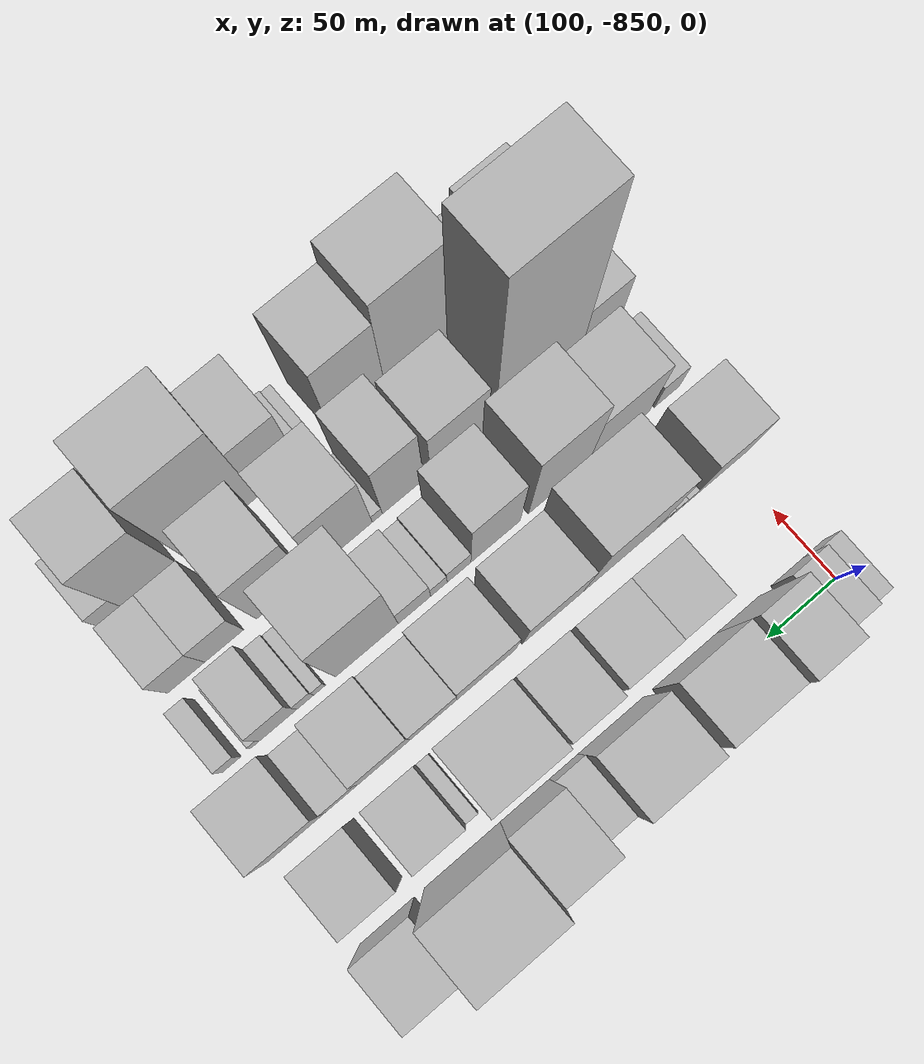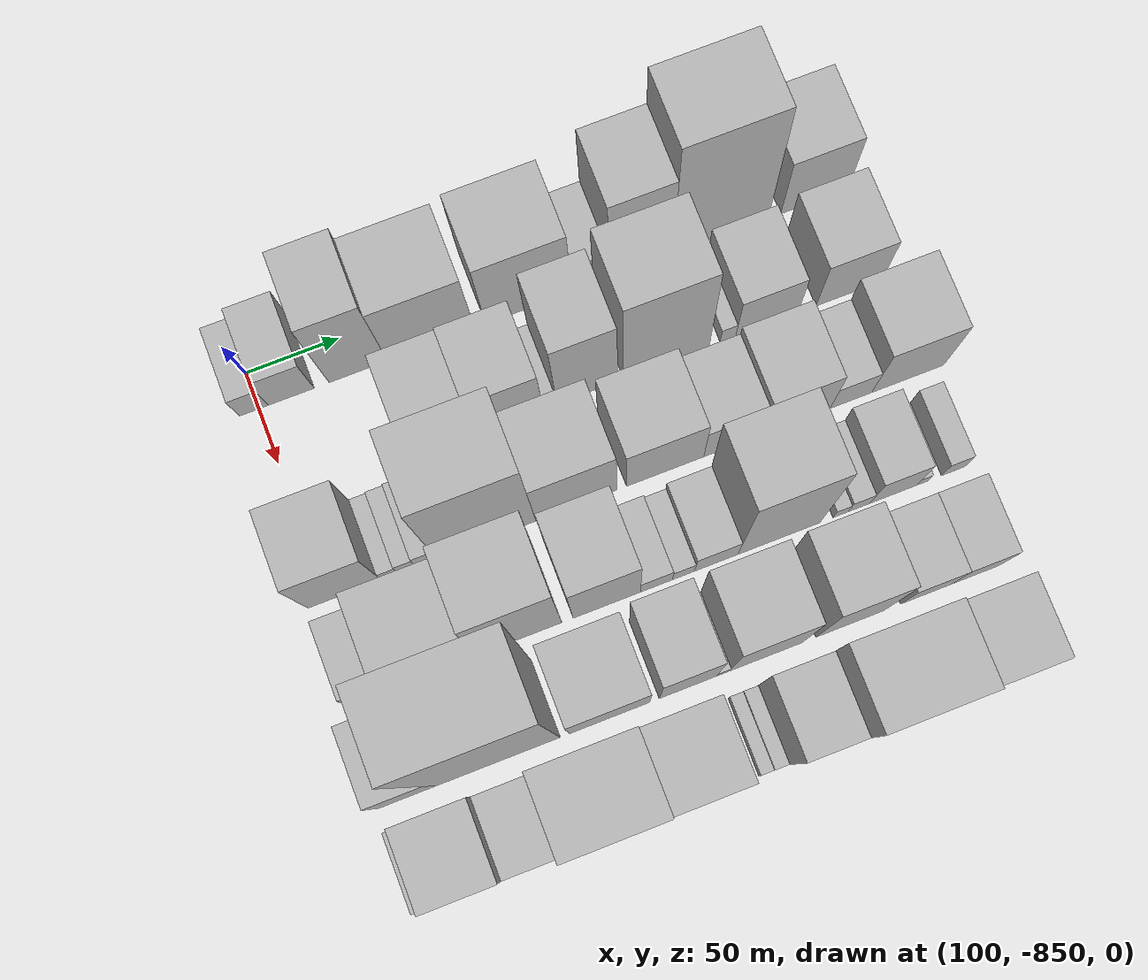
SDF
<sdf version="1.6">
 <world name="default">
  <model name="building_1">
   <static>1</static>
   <pose>100.0000 -852.3548 0 0.000000 0.000000 0.000000</pose>
   <link name="link">
    <pose>0 0 15.00 0 0 0</pose>
    <collision name="collision"><geometry><box><size>40.0000 15.2904 30.0000</size></box></geometry></collision>
    <visual name="visual">
     <cast_shadows>0</cast_shadows>
     <geometry><box><size>40.0000 15.2904 30.0000</size></box></geometry>
     <material>
      <script>
       <uri>model://HANNAS_wall/materials/scripts</uri>
       <uri>model://HANNAS_wall/materials/textures</uri>
       <name>vrc/HANNAS_wall</name>
      </script>
     </material>
    </visual>
   </link>
  </model>
  <model name="building_2">
   <static>1</static>
   <pose>100.0000 -832.4451 0 0.000000 0.000000 0.000000</pose>
   <link name="link">
    <pose>0 0 22.50 0 0 0</pose>
    <collision name="collision"><geometry><box><size>40.0000 24.5290 45.0000</size></box></geometry></collision>
    <visual name="visual">
     <cast_shadows>0</cast_shadows>
     <geometry><box><size>40.0000 24.5290 45.0000</size></box></geometry>
     <material>
      <script>
       <uri>model://HANNAS_wall/materials/scripts</uri>
       <uri>model://HANNAS_wall/materials/textures</uri>
       <name>vrc/HANNAS_wall</name>
      </script>
     </material>
    </visual>
   </link>
  </model>
  <model name="building_3">
   <static>1</static>
   <pose>100.0000 -796.4964 0 0.000000 0.000000 0.000000</pose>
   <link name="link">
    <pose>0 0 48.00 0 0 0</pose>
    <collision name="collision"><geometry><box><size>40.0000 31.3685 96.0000</size></box></geometry></collision>
    <visual name="visual">
     <cast_shadows>0</cast_shadows>
     <geometry><box><size>40.0000 31.3685 96.0000</size></box></geometry>
     <material>
      <script>
       <uri>model://HANNAS_wall/materials/scripts</uri>
       <uri>model://HANNAS_wall/materials/textures</uri>
       <name>vrc/HANNAS_wall</name>
      </script>
     </material>
    </visual>
   </link>
  </model>
  <model name="building_4">
   <static>1</static>
   <pose>100.0000 -757.3240 0 0.000000 0.000000 0.000000</pose>
   <link name="link">
    <pose>0 0 40.50 0 0 0</pose>
    <collision name="collision"><geometry><box><size>40.0000 46.9763 81.0000</size></box></geometry></collision>
    <visual name="visual">
     <cast_shadows>0</cast_shadows>
     <geometry><box><size>40.0000 46.9763 81.0000</size></box></geometry>
     <material>
      <script>
       <uri>model://HANNAS_wall/materials/scripts</uri>
       <uri>model://HANNAS_wall/materials/textures</uri>
       <name>vrc/HANNAS_wall</name>
      </script>
     </material>
    </visual>
   </link>
  </model>
  <model name="building_5">
   <static>1</static>
   <pose>100.0000 -704.3522 0 0.000000 0.000000 0.000000</pose>
   <link name="link">
    <pose>0 0 43.50 0 0 0</pose>
    <collision name="collision"><geometry><box><size>40.0000 46.9672 87.0000</size></box></geometry></collision>
    <visual name="visual">
     <cast_shadows>0</cast_shadows>
     <geometry><box><size>40.0000 46.9672 87.0000</size></box></geometry>
     <material>
      <script>
       <uri>model://HANNAS_wall/materials/scripts</uri>
       <uri>model://HANNAS_wall/materials/textures</uri>
       <name>vrc/HANNAS_wall</name>
      </script>
     </material>
    </visual>
   </link>
  </model>
  <model name="building_6">
   <static>1</static>
   <pose>100.0000 -670.6268 0 0.000000 0.000000 0.000000</pose>
   <link name="link">
    <pose>0 0 19.50 0 0 0</pose>
    <collision name="collision"><geometry><box><size>40.0000 20.4838 39.0000</size></box></geometry></collision>
    <visual name="visual">
     <cast_shadows>0</cast_shadows>
     <geometry><box><size>40.0000 20.4838 39.0000</size></box></geometry>
     <material>
      <script>
       <uri>model://HANNAS_wall/materials/scripts</uri>
       <uri>model://HANNAS_wall/materials/textures</uri>
       <name>vrc/HANNAS_wall</name>
      </script>
     </material>
    </visual>
   </link>
  </model>
  <model name="building_7">
   <static>1</static>
   <pose>100.0000 -643.0278 0 0.000000 0.000000 0.000000</pose>
   <link name="link">
    <pose>0 0 52.50 0 0 0</pose>
    <collision name="collision"><geometry><box><size>40.0000 34.7143 105.0000</size></box></geometry></collision>
    <visual name="visual">
     <cast_shadows>0</cast_shadows>
     <geometry><box><size>40.0000 34.7143 105.0000</size></box></geometry>
     <material>
      <script>
       <uri>model://HANNAS_wall/materials/scripts</uri>
       <uri>model://HANNAS_wall/materials/textures</uri>
       <name>vrc/HANNAS_wall</name>
      </script>
     </material>
    </visual>
   </link>
  </model>
  <model name="building_8">
   <static>1</static>
   <pose>100.0000 -599.3234 0 0.000000 0.000000 0.000000</pose>
   <link name="link">
    <pose>0 0 72.00 0 0 0</pose>
    <collision name="collision"><geometry><box><size>40.0000 52.6946 144.0000</size></box></geometry></collision>
    <visual name="visual">
     <cast_shadows>0</cast_shadows>
     <geometry><box><size>40.0000 52.6946 144.0000</size></box></geometry>
     <material>
      <script>
       <uri>model://HANNAS_wall/materials/scripts</uri>
       <uri>model://HANNAS_wall/materials/textures</uri>
       <name>vrc/HANNAS_wall</name>
      </script>
     </material>
    </visual>
   </link>
  </model>
  <model name="building_9">
   <static>1</static>
   <pose>100.0000 -547.2564 0 0.000000 0.000000 0.000000</pose>
   <link name="link">
    <pose>0 0 34.50 0 0 0</pose>
    <collision name="collision"><geometry><box><size>40.0000 37.4394 69.0000</size></box></geometry></collision>
    <visual name="visual">
     <cast_shadows>0</cast_shadows>
     <geometry><box><size>40.0000 37.4394 69.0000</size></box></geometry>
     <material>
      <script>
       <uri>model://HANNAS_wall/materials/scripts</uri>
       <uri>model://HANNAS_wall/materials/textures</uri>
       <name>vrc/HANNAS_wall</name>
      </script>
     </material>
    </visual>
   </link>
  </model>
  <model name="building_53">
   <static>1</static>
   <pose>152.0000 -769.9118 0 0.000000 0.000000 0.000000</pose>
   <link name="link">
    <pose>0 0 31.50 0 0 0</pose>
    <collision name="collision"><geometry><box><size>40.0000 34.0588 63.0000</size></box></geometry></collision>
    <visual name="visual">
     <cast_shadows>0</cast_shadows>
     <geometry><box><size>40.0000 34.0588 63.0000</size></box></geometry>
     <material>
      <script>
       <uri>model://HANNAS_wall/materials/scripts</uri>
       <uri>model://HANNAS_wall/materials/textures</uri>
       <name>vrc/HANNAS_wall</name>
      </script>
     </material>
    </visual>
   </link>
  </model>
  <model name="building_54">
   <static>1</static>
   <pose>152.0000 -734.5448 0 0.000000 0.000000 0.000000</pose>
   <link name="link">
    <pose>0 0 33.00 0 0 0</pose>
    <collision name="collision"><geometry><box><size>40.0000 36.6750 66.0000</size></box></geometry></collision>
    <visual name="visual">
     <cast_shadows>0</cast_shadows>
     <geometry><box><size>40.0000 36.6750 66.0000</size></box></geometry>
     <material>
      <script>
       <uri>model://HANNAS_wall/materials/scripts</uri>
       <uri>model://HANNAS_wall/materials/textures</uri>
       <name>vrc/HANNAS_wall</name>
      </script>
     </material>
    </visual>
   </link>
  </model>
  <model name="building_55">
   <static>1</static>
   <pose>152.0000 -712.5601 0 0.000000 0.000000 0.000000</pose>
   <link name="link">
    <pose>0 0 7.50 0 0 0</pose>
    <collision name="collision"><geometry><box><size>40.0000 7.2945 15.0000</size></box></geometry></collision>
    <visual name="visual">
     <cast_shadows>0</cast_shadows>
     <geometry><box><size>40.0000 7.2945 15.0000</size></box></geometry>
     <material>
      <script>
       <uri>model://HANNAS_wall/materials/scripts</uri>
       <uri>model://HANNAS_wall/materials/textures</uri>
       <name>vrc/HANNAS_wall</name>
      </script>
     </material>
    </visual>
   </link>
  </model>
  <model name="building_56">
   <static>1</static>
   <pose>152.0000 -692.4282 0 0.000000 0.000000 0.000000</pose>
   <link name="link">
    <pose>0 0 49.50 0 0 0</pose>
    <collision name="collision"><geometry><box><size>40.0000 32.9693 99.0000</size></box></geometry></collision>
    <visual name="visual">
     <cast_shadows>0</cast_shadows>
     <geometry><box><size>40.0000 32.9693 99.0000</size></box></geometry>
     <material>
      <script>
       <uri>model://HANNAS_wall/materials/scripts</uri>
       <uri>model://HANNAS_wall/materials/textures</uri>
       <name>vrc/HANNAS_wall</name>
      </script>
     </material>
    </visual>
   </link>
  </model>
  <model name="building_57">
   <static>1</static>
   <pose>152.0000 -649.6293 0 0.000000 0.000000 0.000000</pose>
   <link name="link">
    <pose>0 0 61.50 0 0 0</pose>
    <collision name="collision"><geometry><box><size>40.0000 46.6286 123.0000</size></box></geometry></collision>
    <visual name="visual">
     <cast_shadows>0</cast_shadows>
     <geometry><box><size>40.0000 46.6286 123.0000</size></box></geometry>
     <material>
      <script>
       <uri>model://HANNAS_wall/materials/scripts</uri>
       <uri>model://HANNAS_wall/materials/textures</uri>
       <name>vrc/HANNAS_wall</name>
      </script>
     </material>
    </visual>
   </link>
  </model>
  <model name="building_58">
   <static>1</static>
   <pose>152.0000 -616.1140 0 0.000000 0.000000 0.000000</pose>
   <link name="link">
    <pose>0 0 10.50 0 0 0</pose>
    <collision name="collision"><geometry><box><size>40.0000 8.4019 21.0000</size></box></geometry></collision>
    <visual name="visual">
     <cast_shadows>0</cast_shadows>
     <geometry><box><size>40.0000 8.4019 21.0000</size></box></geometry>
     <material>
      <script>
       <uri>model://HANNAS_wall/materials/scripts</uri>
       <uri>model://HANNAS_wall/materials/textures</uri>
       <name>vrc/HANNAS_wall</name>
      </script>
     </material>
    </visual>
   </link>
  </model>
  <model name="building_59">
   <static>1</static>
   <pose>152.0000 -594.8590 0 0.000000 0.000000 0.000000</pose>
   <link name="link">
    <pose>0 0 28.50 0 0 0</pose>
    <collision name="collision"><geometry><box><size>40.0000 34.1081 57.0000</size></box></geometry></collision>
    <visual name="visual">
     <cast_shadows>0</cast_shadows>
     <geometry><box><size>40.0000 34.1081 57.0000</size></box></geometry>
     <material>
      <script>
       <uri>model://HANNAS_wall/materials/scripts</uri>
       <uri>model://HANNAS_wall/materials/textures</uri>
       <name>vrc/HANNAS_wall</name>
      </script>
     </material>
    </visual>
   </link>
  </model>
  <model name="building_60">
   <static>1</static>
   <pose>152.0000 -549.8034 0 0.000000 0.000000 0.000000</pose>
   <link name="link">
    <pose>0 0 31.50 0 0 0</pose>
    <collision name="collision"><geometry><box><size>40.0000 36.0030 63.0000</size></box></geometry></collision>
    <visual name="visual">
     <cast_shadows>0</cast_shadows>
     <geometry><box><size>40.0000 36.0030 63.0000</size></box></geometry>
     <material>
      <script>
       <uri>model://HANNAS_wall/materials/scripts</uri>
       <uri>model://HANNAS_wall/materials/textures</uri>
       <name>vrc/HANNAS_wall</name>
      </script>
     </material>
    </visual>
   </link>
  </model>
  <model name="building_103">
   <static>1</static>
   <pose>204.0000 -840.7591 0 0.000000 0.000000 0.000000</pose>
   <link name="link">
    <pose>0 0 36.00 0 0 0</pose>
    <collision name="collision"><geometry><box><size>40.0000 38.4818 72.0000</size></box></geometry></collision>
    <visual name="visual">
     <cast_shadows>0</cast_shadows>
     <geometry><box><size>40.0000 38.4818 72.0000</size></box></geometry>
     <material>
      <script>
       <uri>model://HANNAS_wall/materials/scripts</uri>
       <uri>model://HANNAS_wall/materials/textures</uri>
       <name>vrc/HANNAS_wall</name>
      </script>
     </material>
    </visual>
   </link>
  </model>
  <model name="building_104">
   <static>1</static>
   <pose>204.0000 -817.1044 0 0.000000 0.000000 0.000000</pose>
   <link name="link">
    <pose>0 0 9.00 0 0 0</pose>
    <collision name="collision"><geometry><box><size>40.0000 8.8277 18.0000</size></box></geometry></collision>
    <visual name="visual">
     <cast_shadows>0</cast_shadows>
     <geometry><box><size>40.0000 8.8277 18.0000</size></box></geometry>
     <material>
      <script>
       <uri>model://HANNAS_wall/materials/scripts</uri>
       <uri>model://HANNAS_wall/materials/textures</uri>
       <name>vrc/HANNAS_wall</name>
      </script>
     </material>
    </visual>
   </link>
  </model>
  <model name="building_105">
   <static>1</static>
   <pose>204.0000 -808.0456 0 0.000000 0.000000 0.000000</pose>
   <link name="link">
    <pose>0 0 10.50 0 0 0</pose>
    <collision name="collision"><geometry><box><size>40.0000 9.2898 21.0000</size></box></geometry></collision>
    <visual name="visual">
     <cast_shadows>0</cast_shadows>
     <geometry><box><size>40.0000 9.2898 21.0000</size></box></geometry>
     <material>
      <script>
       <uri>model://HANNAS_wall/materials/scripts</uri>
       <uri>model://HANNAS_wall/materials/textures</uri>
       <name>vrc/HANNAS_wall</name>
      </script>
     </material>
    </visual>
   </link>
  </model>
  <model name="building_106">
   <static>1</static>
   <pose>204.0000 -797.8770 0 0.000000 0.000000 0.000000</pose>
   <link name="link">
    <pose>0 0 12.00 0 0 0</pose>
    <collision name="collision"><geometry><box><size>40.0000 11.0474 24.0000</size></box></geometry></collision>
    <visual name="visual">
     <cast_shadows>0</cast_shadows>
     <geometry><box><size>40.0000 11.0474 24.0000</size></box></geometry>
     <material>
      <script>
       <uri>model://HANNAS_wall/materials/scripts</uri>
       <uri>model://HANNAS_wall/materials/textures</uri>
       <name>vrc/HANNAS_wall</name>
      </script>
     </material>
    </visual>
   </link>
  </model>
  <model name="building_107">
   <static>1</static>
   <pose>204.0000 -766.0872 0 0.000000 0.000000 0.000000</pose>
   <link name="link">
    <pose>0 0 66.00 0 0 0</pose>
    <collision name="collision"><geometry><box><size>40.0000 52.5322 132.0000</size></box></geometry></collision>
    <visual name="visual">
     <cast_shadows>0</cast_shadows>
     <geometry><box><size>40.0000 52.5322 132.0000</size></box></geometry>
     <material>
      <script>
       <uri>model://HANNAS_wall/materials/scripts</uri>
       <uri>model://HANNAS_wall/materials/textures</uri>
       <name>vrc/HANNAS_wall</name>
      </script>
     </material>
    </visual>
   </link>
  </model>
  <model name="building_108">
   <static>1</static>
   <pose>204.0000 -718.1491 0 0.000000 0.000000 0.000000</pose>
   <link name="link">
    <pose>0 0 40.50 0 0 0</pose>
    <collision name="collision"><geometry><box><size>40.0000 43.3438 81.0000</size></box></geometry></collision>
    <visual name="visual">
     <cast_shadows>0</cast_shadows>
     <geometry><box><size>40.0000 43.3438 81.0000</size></box></geometry>
     <material>
      <script>
       <uri>model://HANNAS_wall/materials/scripts</uri>
       <uri>model://HANNAS_wall/materials/textures</uri>
       <name>vrc/HANNAS_wall</name>
      </script>
     </material>
    </visual>
   </link>
  </model>
  <model name="building_109">
   <static>1</static>
   <pose>204.0000 -670.7464 0 0.000000 0.000000 0.000000</pose>
   <link name="link">
    <pose>0 0 36.00 0 0 0</pose>
    <collision name="collision"><geometry><box><size>40.0000 41.4617 72.0000</size></box></geometry></collision>
    <visual name="visual">
     <cast_shadows>0</cast_shadows>
     <geometry><box><size>40.0000 41.4617 72.0000</size></box></geometry>
     <material>
      <script>
       <uri>model://HANNAS_wall/materials/scripts</uri>
       <uri>model://HANNAS_wall/materials/textures</uri>
       <name>vrc/HANNAS_wall</name>
      </script>
     </material>
    </visual>
   </link>
  </model>
  <model name="building_110">
   <static>1</static>
   <pose>204.0000 -633.9360 0 0.000000 0.000000 0.000000</pose>
   <link name="link">
    <pose>0 0 27.00 0 0 0</pose>
    <collision name="collision"><geometry><box><size>40.0000 32.1590 54.0000</size></box></geometry></collision>
    <visual name="visual">
     <cast_shadows>0</cast_shadows>
     <geometry><box><size>40.0000 32.1590 54.0000</size></box></geometry>
     <material>
      <script>
       <uri>model://HANNAS_wall/materials/scripts</uri>
       <uri>model://HANNAS_wall/materials/textures</uri>
       <name>vrc/HANNAS_wall</name>
      </script>
     </material>
    </visual>
   </link>
  </model>
  <model name="building_111">
   <static>1</static>
   <pose>204.0000 -599.6527 0 0.000000 0.000000 0.000000</pose>
   <link name="link">
    <pose>0 0 33.00 0 0 0</pose>
    <collision name="collision"><geometry><box><size>40.0000 36.4077 66.0000</size></box></geometry></collision>
    <visual name="visual">
     <cast_shadows>0</cast_shadows>
     <geometry><box><size>40.0000 36.4077 66.0000</size></box></geometry>
     <material>
      <script>
       <uri>model://HANNAS_wall/materials/scripts</uri>
       <uri>model://HANNAS_wall/materials/textures</uri>
       <name>vrc/HANNAS_wall</name>
      </script>
     </material>
    </visual>
   </link>
  </model>
  <model name="building_112">
   <static>1</static>
   <pose>204.0000 -570.1406 0 0.000000 0.000000 0.000000</pose>
   <link name="link">
    <pose>0 0 19.50 0 0 0</pose>
    <collision name="collision"><geometry><box><size>40.0000 22.6165 39.0000</size></box></geometry></collision>
    <visual name="visual">
     <cast_shadows>0</cast_shadows>
     <geometry><box><size>40.0000 22.6165 39.0000</size></box></geometry>
     <material>
      <script>
       <uri>model://HANNAS_wall/materials/scripts</uri>
       <uri>model://HANNAS_wall/materials/textures</uri>
       <name>vrc/HANNAS_wall</name>
      </script>
     </material>
    </visual>
   </link>
  </model>
  <model name="building_113">
   <static>1</static>
   <pose>204.0000 -538.9846 0 0.000000 0.000000 0.000000</pose>
   <link name="link">
    <pose>0 0 36.00 0 0 0</pose>
    <collision name="collision"><geometry><box><size>40.0000 39.6955 72.0000</size></box></geometry></collision>
    <visual name="visual">
     <cast_shadows>0</cast_shadows>
     <geometry><box><size>40.0000 39.6955 72.0000</size></box></geometry>
     <material>
      <script>
       <uri>model://HANNAS_wall/materials/scripts</uri>
       <uri>model://HANNAS_wall/materials/textures</uri>
       <name>vrc/HANNAS_wall</name>
      </script>
     </material>
    </visual>
   </link>
  </model>
  <model name="building_155">
   <static>1</static>
   <pose>256.0000 -847.7149 0 0.000000 0.000000 0.000000</pose>
   <link name="link">
    <pose>0 0 18.00 0 0 0</pose>
    <collision name="collision"><geometry><box><size>40.0000 18.5703 36.0000</size></box></geometry></collision>
    <visual name="visual">
     <cast_shadows>0</cast_shadows>
     <geometry><box><size>40.0000 18.5703 36.0000</size></box></geometry>
     <material>
      <script>
       <uri>model://HANNAS_wall/materials/scripts</uri>
       <uri>model://HANNAS_wall/materials/textures</uri>
       <name>vrc/HANNAS_wall</name>
      </script>
     </material>
    </visual>
   </link>
  </model>
  <model name="building_156">
   <static>1</static>
   <pose>256.0000 -811.8264 0 0.000000 0.000000 0.000000</pose>
   <link name="link">
    <pose>0 0 42.00 0 0 0</pose>
    <collision name="collision"><geometry><box><size>40.0000 45.2066 84.0000</size></box></geometry></collision>
    <visual name="visual">
     <cast_shadows>0</cast_shadows>
     <geometry><box><size>40.0000 45.2066 84.0000</size></box></geometry>
     <material>
      <script>
       <uri>model://HANNAS_wall/materials/scripts</uri>
       <uri>model://HANNAS_wall/materials/textures</uri>
       <name>vrc/HANNAS_wall</name>
      </script>
     </material>
    </visual>
   </link>
  </model>
  <model name="building_157">
   <static>1</static>
   <pose>256.0000 -767.5181 0 0.000000 0.000000 0.000000</pose>
   <link name="link">
    <pose>0 0 58.50 0 0 0</pose>
    <collision name="collision"><geometry><box><size>40.0000 43.4101 117.0000</size></box></geometry></collision>
    <visual name="visual">
     <cast_shadows>0</cast_shadows>
     <geometry><box><size>40.0000 43.4101 117.0000</size></box></geometry>
     <material>
      <script>
       <uri>model://HANNAS_wall/materials/scripts</uri>
       <uri>model://HANNAS_wall/materials/textures</uri>
       <name>vrc/HANNAS_wall</name>
      </script>
     </material>
    </visual>
   </link>
  </model>
  <model name="building_158">
   <static>1</static>
   <pose>256.0000 -722.0555 0 0.000000 0.000000 0.000000</pose>
   <link name="link">
    <pose>0 0 46.50 0 0 0</pose>
    <collision name="collision"><geometry><box><size>40.0000 35.5151 93.0000</size></box></geometry></collision>
    <visual name="visual">
     <cast_shadows>0</cast_shadows>
     <geometry><box><size>40.0000 35.5151 93.0000</size></box></geometry>
     <material>
      <script>
       <uri>model://HANNAS_wall/materials/scripts</uri>
       <uri>model://HANNAS_wall/materials/textures</uri>
       <name>vrc/HANNAS_wall</name>
      </script>
     </material>
    </visual>
   </link>
  </model>
  <model name="building_159">
   <static>1</static>
   <pose>256.0000 -695.8153 0 0.000000 0.000000 0.000000</pose>
   <link name="link">
    <pose>0 0 15.00 0 0 0</pose>
    <collision name="collision"><geometry><box><size>40.0000 16.9652 30.0000</size></box></geometry></collision>
    <visual name="visual">
     <cast_shadows>0</cast_shadows>
     <geometry><box><size>40.0000 16.9652 30.0000</size></box></geometry>
     <material>
      <script>
       <uri>model://HANNAS_wall/materials/scripts</uri>
       <uri>model://HANNAS_wall/materials/textures</uri>
       <name>vrc/HANNAS_wall</name>
      </script>
     </material>
    </visual>
   </link>
  </model>
  <model name="building_160">
   <static>1</static>
   <pose>256.0000 -681.4408 0 0.000000 0.000000 0.000000</pose>
   <link name="link">
    <pose>0 0 12.00 0 0 0</pose>
    <collision name="collision"><geometry><box><size>40.0000 11.7838 24.0000</size></box></geometry></collision>
    <visual name="visual">
     <cast_shadows>0</cast_shadows>
     <geometry><box><size>40.0000 11.7838 24.0000</size></box></geometry>
     <material>
      <script>
       <uri>model://HANNAS_wall/materials/scripts</uri>
       <uri>model://HANNAS_wall/materials/textures</uri>
       <name>vrc/HANNAS_wall</name>
      </script>
     </material>
    </visual>
   </link>
  </model>
  <model name="building_161">
   <static>1</static>
   <pose>256.0000 -664.0144 0 0.000000 0.000000 0.000000</pose>
   <link name="link">
    <pose>0 0 19.50 0 0 0</pose>
    <collision name="collision"><geometry><box><size>40.0000 23.0691 39.0000</size></box></geometry></collision>
    <visual name="visual">
     <cast_shadows>0</cast_shadows>
     <geometry><box><size>40.0000 23.0691 39.0000</size></box></geometry>
     <material>
      <script>
       <uri>model://HANNAS_wall/materials/scripts</uri>
       <uri>model://HANNAS_wall/materials/textures</uri>
       <name>vrc/HANNAS_wall</name>
      </script>
     </material>
    </visual>
   </link>
  </model>
  <model name="building_162">
   <static>1</static>
   <pose>256.0000 -630.4085 0 0.000000 0.000000 0.000000</pose>
   <link name="link">
    <pose>0 0 67.50 0 0 0</pose>
    <collision name="collision"><geometry><box><size>40.0000 44.1425 135.0000</size></box></geometry></collision>
    <visual name="visual">
     <cast_shadows>0</cast_shadows>
     <geometry><box><size>40.0000 44.1425 135.0000</size></box></geometry>
     <material>
      <script>
       <uri>model://HANNAS_wall/materials/scripts</uri>
       <uri>model://HANNAS_wall/materials/textures</uri>
       <name>vrc/HANNAS_wall</name>
      </script>
     </material>
    </visual>
   </link>
  </model>
  <model name="building_163">
   <static>1</static>
   <pose>256.0000 -597.2795 0 0.000000 0.000000 0.000000</pose>
   <link name="link">
    <pose>0 0 9.00 0 0 0</pose>
    <collision name="collision"><geometry><box><size>40.0000 8.1156 18.0000</size></box></geometry></collision>
    <visual name="visual">
     <cast_shadows>0</cast_shadows>
     <geometry><box><size>40.0000 8.1156 18.0000</size></box></geometry>
     <material>
      <script>
       <uri>model://HANNAS_wall/materials/scripts</uri>
       <uri>model://HANNAS_wall/materials/textures</uri>
       <name>vrc/HANNAS_wall</name>
      </script>
     </material>
    </visual>
   </link>
  </model>
  <model name="building_164">
   <static>1</static>
   <pose>256.0000 -587.3273 0 0.000000 0.000000 0.000000</pose>
   <link name="link">
    <pose>0 0 12.00 0 0 0</pose>
    <collision name="collision"><geometry><box><size>40.0000 11.7887 24.0000</size></box></geometry></collision>
    <visual name="visual">
     <cast_shadows>0</cast_shadows>
     <geometry><box><size>40.0000 11.7887 24.0000</size></box></geometry>
     <material>
      <script>
       <uri>model://HANNAS_wall/materials/scripts</uri>
       <uri>model://HANNAS_wall/materials/textures</uri>
       <name>vrc/HANNAS_wall</name>
      </script>
     </material>
    </visual>
   </link>
  </model>
  <model name="building_165">
   <static>1</static>
   <pose>256.0000 -568.5704 0 0.000000 0.000000 0.000000</pose>
   <link name="link">
    <pose>0 0 25.50 0 0 0</pose>
    <collision name="collision"><geometry><box><size>40.0000 25.7251 51.0000</size></box></geometry></collision>
    <visual name="visual">
     <cast_shadows>0</cast_shadows>
     <geometry><box><size>40.0000 25.7251 51.0000</size></box></geometry>
     <material>
      <script>
       <uri>model://HANNAS_wall/materials/scripts</uri>
       <uri>model://HANNAS_wall/materials/textures</uri>
       <name>vrc/HANNAS_wall</name>
      </script>
     </material>
    </visual>
   </link>
  </model>
  <model name="building_166">
   <static>1</static>
   <pose>256.0000 -552.6702 0 0.000000 0.000000 0.000000</pose>
   <link name="link">
    <pose>0 0 7.50 0 0 0</pose>
    <collision name="collision"><geometry><box><size>40.0000 6.0754 15.0000</size></box></geometry></collision>
    <visual name="visual">
     <cast_shadows>0</cast_shadows>
     <geometry><box><size>40.0000 6.0754 15.0000</size></box></geometry>
     <material>
      <script>
       <uri>model://HANNAS_wall/materials/scripts</uri>
       <uri>model://HANNAS_wall/materials/textures</uri>
       <name>vrc/HANNAS_wall</name>
      </script>
     </material>
    </visual>
   </link>
  </model>
  <model name="building_167">
   <static>1</static>
   <pose>256.0000 -536.2265 0 0.000000 0.000000 0.000000</pose>
   <link name="link">
    <pose>0 0 13.50 0 0 0</pose>
    <collision name="collision"><geometry><box><size>40.0000 12.8118 27.0000</size></box></geometry></collision>
    <visual name="visual">
     <cast_shadows>0</cast_shadows>
     <geometry><box><size>40.0000 12.8118 27.0000</size></box></geometry>
     <material>
      <script>
       <uri>model://HANNAS_wall/materials/scripts</uri>
       <uri>model://HANNAS_wall/materials/textures</uri>
       <name>vrc/HANNAS_wall</name>
      </script>
     </material>
    </visual>
   </link>
  </model>
  <model name="building_206">
   <static>1</static>
   <pose>308.0000 -845.2078 0 0.000000 0.000000 0.000000</pose>
   <link name="link">
    <pose>0 0 28.50 0 0 0</pose>
    <collision name="collision"><geometry><box><size>40.0000 29.5845 57.0000</size></box></geometry></collision>
    <visual name="visual">
     <cast_shadows>0</cast_shadows>
     <geometry><box><size>40.0000 29.5845 57.0000</size></box></geometry>
     <material>
      <script>
       <uri>model://HANNAS_wall/materials/scripts</uri>
       <uri>model://HANNAS_wall/materials/textures</uri>
       <name>vrc/HANNAS_wall</name>
      </script>
     </material>
    </visual>
   </link>
  </model>
  <model name="building_207">
   <static>1</static>
   <pose>308.0000 -798.3993 0 0.000000 0.000000 0.000000</pose>
   <link name="link">
    <pose>0 0 103.50 0 0 0</pose>
    <collision name="collision"><geometry><box><size>40.0000 64.0325 207.0000</size></box></geometry></collision>
    <visual name="visual">
     <cast_shadows>0</cast_shadows>
     <geometry><box><size>40.0000 64.0325 207.0000</size></box></geometry>
     <material>
      <script>
       <uri>model://HANNAS_wall/materials/scripts</uri>
       <uri>model://HANNAS_wall/materials/textures</uri>
       <name>vrc/HANNAS_wall</name>
      </script>
     </material>
    </visual>
   </link>
  </model>
  <model name="building_208">
   <static>1</static>
   <pose>308.0000 -740.5497 0 0.000000 0.000000 0.000000</pose>
   <link name="link">
    <pose>0 0 36.00 0 0 0</pose>
    <collision name="collision"><geometry><box><size>40.0000 41.6667 72.0000</size></box></geometry></collision>
    <visual name="visual">
     <cast_shadows>0</cast_shadows>
     <geometry><box><size>40.0000 41.6667 72.0000</size></box></geometry>
     <material>
      <script>
       <uri>model://HANNAS_wall/materials/scripts</uri>
       <uri>model://HANNAS_wall/materials/textures</uri>
       <name>vrc/HANNAS_wall</name>
      </script>
     </material>
    </visual>
   </link>
  </model>
  <model name="building_209">
   <static>1</static>
   <pose>308.0000 -699.7964 0 0.000000 0.000000 0.000000</pose>
   <link name="link">
    <pose>0 0 48.00 0 0 0</pose>
    <collision name="collision"><geometry><box><size>40.0000 29.8399 96.0000</size></box></geometry></collision>
    <visual name="visual">
     <cast_shadows>0</cast_shadows>
     <geometry><box><size>40.0000 29.8399 96.0000</size></box></geometry>
     <material>
      <script>
       <uri>model://HANNAS_wall/materials/scripts</uri>
       <uri>model://HANNAS_wall/materials/textures</uri>
       <name>vrc/HANNAS_wall</name>
      </script>
     </material>
    </visual>
   </link>
  </model>
  <model name="building_210">
   <static>1</static>
   <pose>308.0000 -681.2720 0 0.000000 0.000000 0.000000</pose>
   <link name="link">
    <pose>0 0 7.50 0 0 0</pose>
    <collision name="collision"><geometry><box><size>40.0000 7.2088 15.0000</size></box></geometry></collision>
    <visual name="visual">
     <cast_shadows>0</cast_shadows>
     <geometry><box><size>40.0000 7.2088 15.0000</size></box></geometry>
     <material>
      <script>
       <uri>model://HANNAS_wall/materials/scripts</uri>
       <uri>model://HANNAS_wall/materials/textures</uri>
       <name>vrc/HANNAS_wall</name>
      </script>
     </material>
    </visual>
   </link>
  </model>
  <model name="building_211">
   <static>1</static>
   <pose>308.0000 -658.3327 0 0.000000 0.000000 0.000000</pose>
   <link name="link">
    <pose>0 0 49.50 0 0 0</pose>
    <collision name="collision"><geometry><box><size>40.0000 38.6698 99.0000</size></box></geometry></collision>
    <visual name="visual">
     <cast_shadows>0</cast_shadows>
     <geometry><box><size>40.0000 38.6698 99.0000</size></box></geometry>
     <material>
      <script>
       <uri>model://HANNAS_wall/materials/scripts</uri>
       <uri>model://HANNAS_wall/materials/textures</uri>
       <name>vrc/HANNAS_wall</name>
      </script>
     </material>
    </visual>
   </link>
  </model>
  <model name="building_212">
   <static>1</static>
   <pose>308.0000 -613.8418 0 0.000000 0.000000 0.000000</pose>
   <link name="link">
    <pose>0 0 52.50 0 0 0</pose>
    <collision name="collision"><geometry><box><size>40.0000 36.3119 105.0000</size></box></geometry></collision>
    <visual name="visual">
     <cast_shadows>0</cast_shadows>
     <geometry><box><size>40.0000 36.3119 105.0000</size></box></geometry>
     <material>
      <script>
       <uri>model://HANNAS_wall/materials/scripts</uri>
       <uri>model://HANNAS_wall/materials/textures</uri>
       <name>vrc/HANNAS_wall</name>
      </script>
     </material>
    </visual>
   </link>
  </model>
  <model name="building_213">
   <static>1</static>
   <pose>308.0000 -573.1574 0 0.000000 0.000000 0.000000</pose>
   <link name="link">
    <pose>0 0 25.50 0 0 0</pose>
    <collision name="collision"><geometry><box><size>40.0000 27.0570 51.0000</size></box></geometry></collision>
    <visual name="visual">
     <cast_shadows>0</cast_shadows>
     <geometry><box><size>40.0000 27.0570 51.0000</size></box></geometry>
     <material>
      <script>
       <uri>model://HANNAS_wall/materials/scripts</uri>
       <uri>model://HANNAS_wall/materials/textures</uri>
       <name>vrc/HANNAS_wall</name>
      </script>
     </material>
    </visual>
   </link>
  </model>
  <model name="building_214">
   <static>1</static>
   <pose>308.0000 -546.7900 0 0.000000 0.000000 0.000000</pose>
   <link name="link">
    <pose>0 0 25.50 0 0 0</pose>
    <collision name="collision"><geometry><box><size>40.0000 25.6778 51.0000</size></box></geometry></collision>
    <visual name="visual">
     <cast_shadows>0</cast_shadows>
     <geometry><box><size>40.0000 25.6778 51.0000</size></box></geometry>
     <material>
      <script>
       <uri>model://HANNAS_wall/materials/scripts</uri>
       <uri>model://HANNAS_wall/materials/textures</uri>
       <name>vrc/HANNAS_wall</name>
      </script>
     </material>
    </visual>
   </link>
  </model>
  <model name="building_253">
   <static>1</static>
   <pose>360.0000 -855.1344 0 0.000000 0.000000 0.000000</pose>
   <link name="link">
    <pose>0 0 10.50 0 0 0</pose>
    <collision name="collision"><geometry><box><size>40.0000 9.7311 21.0000</size></box></geometry></collision>
    <visual name="visual">
     <cast_shadows>0</cast_shadows>
     <geometry><box><size>40.0000 9.7311 21.0000</size></box></geometry>
     <material>
      <script>
       <uri>model://HANNAS_wall/materials/scripts</uri>
       <uri>model://HANNAS_wall/materials/textures</uri>
       <name>vrc/HANNAS_wall</name>
      </script>
     </material>
    </visual>
   </link>
  </model>
  <model name="building_254">
   <static>1</static>
   <pose>360.0000 -831.3460 0 0.000000 0.000000 0.000000</pose>
   <link name="link">
    <pose>0 0 37.50 0 0 0</pose>
    <collision name="collision"><geometry><box><size>40.0000 37.8457 75.0000</size></box></geometry></collision>
    <visual name="visual">
     <cast_shadows>0</cast_shadows>
     <geometry><box><size>40.0000 37.8457 75.0000</size></box></geometry>
     <material>
      <script>
       <uri>model://HANNAS_wall/materials/scripts</uri>
       <uri>model://HANNAS_wall/materials/textures</uri>
       <name>vrc/HANNAS_wall</name>
      </script>
     </material>
    </visual>
   </link>
  </model>
  <model name="building_255">
   <static>1</static>
   <pose>360.0000 -797.2309 0 0.000000 0.000000 0.000000</pose>
   <link name="link">
    <pose>0 0 27.00 0 0 0</pose>
    <collision name="collision"><geometry><box><size>40.0000 30.3845 54.0000</size></box></geometry></collision>
    <visual name="visual">
     <cast_shadows>0</cast_shadows>
     <geometry><box><size>40.0000 30.3845 54.0000</size></box></geometry>
     <material>
      <script>
       <uri>model://HANNAS_wall/materials/scripts</uri>
       <uri>model://HANNAS_wall/materials/textures</uri>
       <name>vrc/HANNAS_wall</name>
      </script>
     </material>
    </visual>
   </link>
  </model>
  <model name="building_256">
   <static>1</static>
   <pose>360.0000 -756.6202 0 0.000000 0.000000 0.000000</pose>
   <link name="link">
    <pose>0 0 66.00 0 0 0</pose>
    <collision name="collision"><geometry><box><size>40.0000 50.8369 132.0000</size></box></geometry></collision>
    <visual name="visual">
     <cast_shadows>0</cast_shadows>
     <geometry><box><size>40.0000 50.8369 132.0000</size></box></geometry>
     <material>
      <script>
       <uri>model://HANNAS_wall/materials/scripts</uri>
       <uri>model://HANNAS_wall/materials/textures</uri>
       <name>vrc/HANNAS_wall</name>
      </script>
     </material>
    </visual>
   </link>
  </model>
  <model name="building_257">
   <static>1</static>
   <pose>360.0000 -711.7576 0 0.000000 0.000000 0.000000</pose>
   <link name="link">
    <pose>0 0 54.00 0 0 0</pose>
    <collision name="collision"><geometry><box><size>40.0000 38.8882 108.0000</size></box></geometry></collision>
    <visual name="visual">
     <cast_shadows>0</cast_shadows>
     <geometry><box><size>40.0000 38.8882 108.0000</size></box></geometry>
     <material>
      <script>
       <uri>model://HANNAS_wall/materials/scripts</uri>
       <uri>model://HANNAS_wall/materials/textures</uri>
       <name>vrc/HANNAS_wall</name>
      </script>
     </material>
    </visual>
   </link>
  </model>
  <model name="building_258">
   <static>1</static>
   <pose>360.0000 -679.8027 0 0.000000 0.000000 0.000000</pose>
   <link name="link">
    <pose>0 0 7.50 0 0 0</pose>
    <collision name="collision"><geometry><box><size>40.0000 7.0216 15.0000</size></box></geometry></collision>
    <visual name="visual">
     <cast_shadows>0</cast_shadows>
     <geometry><box><size>40.0000 7.0216 15.0000</size></box></geometry>
     <material>
      <script>
       <uri>model://HANNAS_wall/materials/scripts</uri>
       <uri>model://HANNAS_wall/materials/textures</uri>
       <name>vrc/HANNAS_wall</name>
      </script>
     </material>
    </visual>
   </link>
  </model>
  <model name="building_259">
   <static>1</static>
   <pose>360.0000 -672.5472 0 0.000000 0.000000 0.000000</pose>
   <link name="link">
    <pose>0 0 9.00 0 0 0</pose>
    <collision name="collision"><geometry><box><size>40.0000 7.4893 18.0000</size></box></geometry></collision>
    <visual name="visual">
     <cast_shadows>0</cast_shadows>
     <geometry><box><size>40.0000 7.4893 18.0000</size></box></geometry>
     <material>
      <script>
       <uri>model://HANNAS_wall/materials/scripts</uri>
       <uri>model://HANNAS_wall/materials/textures</uri>
       <name>vrc/HANNAS_wall</name>
      </script>
     </material>
    </visual>
   </link>
  </model>
  <model name="building_260">
   <static>1</static>
   <pose>360.0000 -653.9598 0 0.000000 0.000000 0.000000</pose>
   <link name="link">
    <pose>0 0 48.00 0 0 0</pose>
    <collision name="collision"><geometry><box><size>40.0000 29.6855 96.0000</size></box></geometry></collision>
    <visual name="visual">
     <cast_shadows>0</cast_shadows>
     <geometry><box><size>40.0000 29.6855 96.0000</size></box></geometry>
     <material>
      <script>
       <uri>model://HANNAS_wall/materials/scripts</uri>
       <uri>model://HANNAS_wall/materials/textures</uri>
       <name>vrc/HANNAS_wall</name>
      </script>
     </material>
    </visual>
   </link>
  </model>
  <model name="building_261">
   <static>1</static>
   <pose>360.0000 -613.0519 0 0.000000 0.000000 0.000000</pose>
   <link name="link">
    <pose>0 0 69.00 0 0 0</pose>
    <collision name="collision"><geometry><box><size>40.0000 52.1304 138.0000</size></box></geometry></collision>
    <visual name="visual">
     <cast_shadows>0</cast_shadows>
     <geometry><box><size>40.0000 52.1304 138.0000</size></box></geometry>
     <material>
      <script>
       <uri>model://HANNAS_wall/materials/scripts</uri>
       <uri>model://HANNAS_wall/materials/textures</uri>
       <name>vrc/HANNAS_wall</name>
      </script>
     </material>
    </visual>
   </link>
  </model>
  <model name="building_262">
   <static>1</static>
   <pose>360.0000 -563.2148 0 0.000000 0.000000 0.000000</pose>
   <link name="link">
    <pose>0 0 49.50 0 0 0</pose>
    <collision name="collision"><geometry><box><size>40.0000 37.5438 99.0000</size></box></geometry></collision>
    <visual name="visual">
     <cast_shadows>0</cast_shadows>
     <geometry><box><size>40.0000 37.5438 99.0000</size></box></geometry>
     <material>
      <script>
       <uri>model://HANNAS_wall/materials/scripts</uri>
       <uri>model://HANNAS_wall/materials/textures</uri>
       <name>vrc/HANNAS_wall</name>
      </script>
     </material>
    </visual>
   </link>
  </model>
  <model name="building_263">
   <static>1</static>
   <pose>360.0000 -536.3073 0 0.000000 0.000000 0.000000</pose>
   <link name="link">
    <pose>0 0 15.00 0 0 0</pose>
    <collision name="collision"><geometry><box><size>40.0000 16.2712 30.0000</size></box></geometry></collision>
    <visual name="visual">
     <cast_shadows>0</cast_shadows>
     <geometry><box><size>40.0000 16.2712 30.0000</size></box></geometry>
     <material>
      <script>
       <uri>model://HANNAS_wall/materials/scripts</uri>
       <uri>model://HANNAS_wall/materials/textures</uri>
       <name>vrc/HANNAS_wall</name>
      </script>
     </material>
    </visual>
   </link>
  </model>
 </world>
</sdf>
